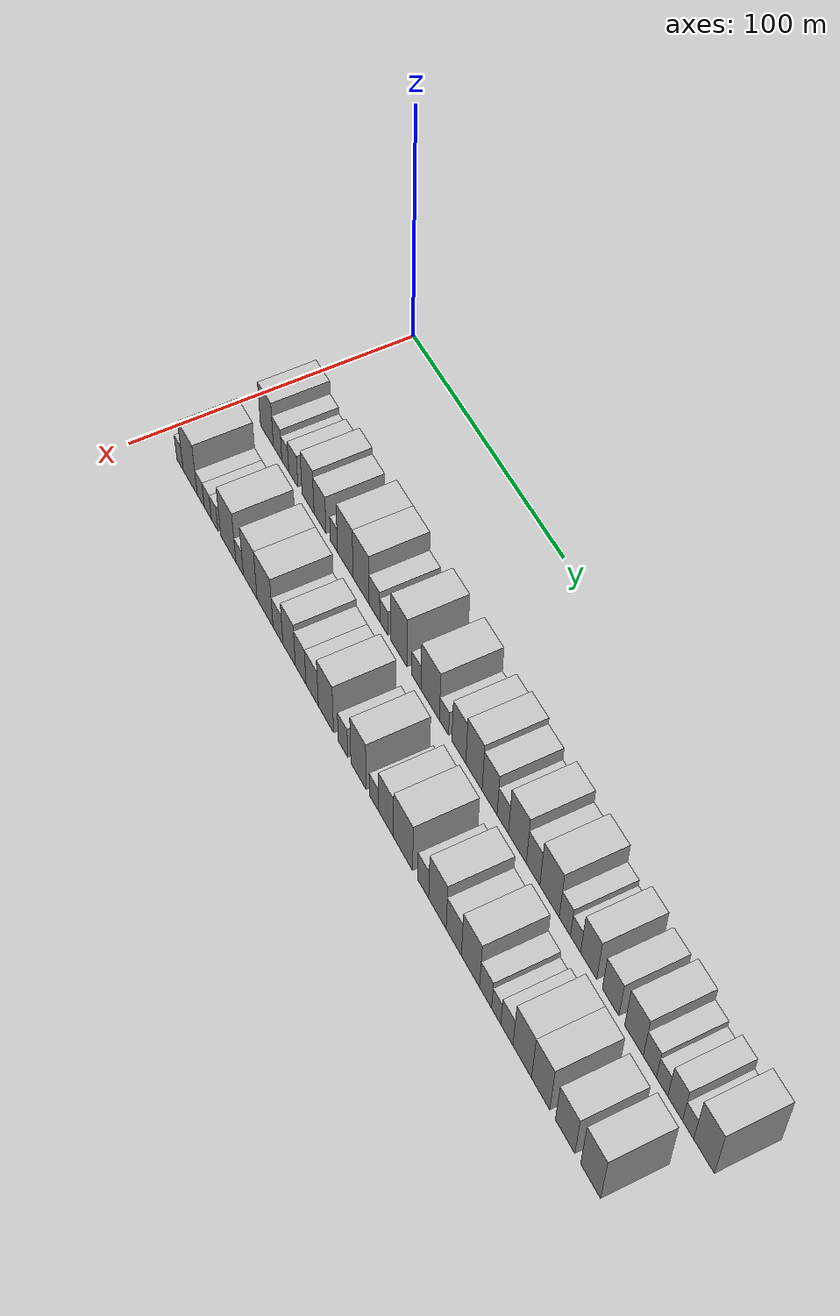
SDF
<sdf version="1.6">
 <world name="default">
  <model name="building_30">
   <static>1</static>
   <pose>50.0000 16.5006 0 0.000000 0.000000 0.000000</pose>
   <link name="link">
    <pose>0 0 10.50 0 0 0</pose>
    <collision name="collision"><geometry><box><size>20.0000 9.6423 21.0000</size></box></geometry></collision>
    <visual name="visual">
     <cast_shadows>0</cast_shadows>
     <geometry><box><size>20.0000 9.6423 21.0000</size></box></geometry>
     <material>
      <script>
       <uri>model://HANNAS_wall/materials/scripts</uri>
       <uri>model://HANNAS_wall/materials/textures</uri>
       <name>vrc/HANNAS_wall</name>
      </script>
     </material>
    </visual>
   </link>
  </model>
  <model name="building_31">
   <static>1</static>
   <pose>50.0000 24.4151 0 0.000000 0.000000 0.000000</pose>
   <link name="link">
    <pose>0 0 7.50 0 0 0</pose>
    <collision name="collision"><geometry><box><size>20.0000 6.1867 15.0000</size></box></geometry></collision>
    <visual name="visual">
     <cast_shadows>0</cast_shadows>
     <geometry><box><size>20.0000 6.1867 15.0000</size></box></geometry>
     <material>
      <script>
       <uri>model://HANNAS_wall/materials/scripts</uri>
       <uri>model://HANNAS_wall/materials/textures</uri>
       <name>vrc/HANNAS_wall</name>
      </script>
     </material>
    </visual>
   </link>
  </model>
  <model name="building_32">
   <static>1</static>
   <pose>50.0000 30.0523 0 0.000000 0.000000 0.000000</pose>
   <link name="link">
    <pose>0 0 6.00 0 0 0</pose>
    <collision name="collision"><geometry><box><size>20.0000 5.0875 12.0000</size></box></geometry></collision>
    <visual name="visual">
     <cast_shadows>0</cast_shadows>
     <geometry><box><size>20.0000 5.0875 12.0000</size></box></geometry>
     <material>
      <script>
       <uri>model://HANNAS_wall/materials/scripts</uri>
       <uri>model://HANNAS_wall/materials/textures</uri>
       <name>vrc/HANNAS_wall</name>
      </script>
     </material>
    </visual>
   </link>
  </model>
  <model name="building_33">
   <static>1</static>
   <pose>50.0000 35.8845 0 0.000000 0.000000 0.000000</pose>
   <link name="link">
    <pose>0 0 7.50 0 0 0</pose>
    <collision name="collision"><geometry><box><size>20.0000 6.5770 15.0000</size></box></geometry></collision>
    <visual name="visual">
     <cast_shadows>0</cast_shadows>
     <geometry><box><size>20.0000 6.5770 15.0000</size></box></geometry>
     <material>
      <script>
       <uri>model://HANNAS_wall/materials/scripts</uri>
       <uri>model://HANNAS_wall/materials/textures</uri>
       <name>vrc/HANNAS_wall</name>
      </script>
     </material>
    </visual>
   </link>
  </model>
  <model name="building_34">
   <static>1</static>
   <pose>50.0000 46.4833 0 0.000000 0.000000 0.000000</pose>
   <link name="link">
    <pose>0 0 10.50 0 0 0</pose>
    <collision name="collision"><geometry><box><size>20.0000 8.6205 21.0000</size></box></geometry></collision>
    <visual name="visual">
     <cast_shadows>0</cast_shadows>
     <geometry><box><size>20.0000 8.6205 21.0000</size></box></geometry>
     <material>
      <script>
       <uri>model://HANNAS_wall/materials/scripts</uri>
       <uri>model://HANNAS_wall/materials/textures</uri>
       <name>vrc/HANNAS_wall</name>
      </script>
     </material>
    </visual>
   </link>
  </model>
  <model name="building_35">
   <static>1</static>
   <pose>50.0000 55.0244 0 0.000000 0.000000 0.000000</pose>
   <link name="link">
    <pose>0 0 9.00 0 0 0</pose>
    <collision name="collision"><geometry><box><size>20.0000 8.4618 18.0000</size></box></geometry></collision>
    <visual name="visual">
     <cast_shadows>0</cast_shadows>
     <geometry><box><size>20.0000 8.4618 18.0000</size></box></geometry>
     <material>
      <script>
       <uri>model://HANNAS_wall/materials/scripts</uri>
       <uri>model://HANNAS_wall/materials/textures</uri>
       <name>vrc/HANNAS_wall</name>
      </script>
     </material>
    </visual>
   </link>
  </model>
  <model name="building_36">
   <static>1</static>
   <pose>50.0000 64.7247 0 0.000000 0.000000 0.000000</pose>
   <link name="link">
    <pose>0 0 6.00 0 0 0</pose>
    <collision name="collision"><geometry><box><size>20.0000 4.9388 12.0000</size></box></geometry></collision>
    <visual name="visual">
     <cast_shadows>0</cast_shadows>
     <geometry><box><size>20.0000 4.9388 12.0000</size></box></geometry>
     <material>
      <script>
       <uri>model://HANNAS_wall/materials/scripts</uri>
       <uri>model://HANNAS_wall/materials/textures</uri>
       <name>vrc/HANNAS_wall</name>
      </script>
     </material>
    </visual>
   </link>
  </model>
  <model name="building_37">
   <static>1</static>
   <pose>50.0000 72.5590 0 0.000000 0.000000 0.000000</pose>
   <link name="link">
    <pose>0 0 12.00 0 0 0</pose>
    <collision name="collision"><geometry><box><size>20.0000 10.7297 24.0000</size></box></geometry></collision>
    <visual name="visual">
     <cast_shadows>0</cast_shadows>
     <geometry><box><size>20.0000 10.7297 24.0000</size></box></geometry>
     <material>
      <script>
       <uri>model://HANNAS_wall/materials/scripts</uri>
       <uri>model://HANNAS_wall/materials/textures</uri>
       <name>vrc/HANNAS_wall</name>
      </script>
     </material>
    </visual>
   </link>
  </model>
  <model name="building_38">
   <static>1</static>
   <pose>50.0000 83.3200 0 0.000000 0.000000 0.000000</pose>
   <link name="link">
    <pose>0 0 12.00 0 0 0</pose>
    <collision name="collision"><geometry><box><size>20.0000 10.7925 24.0000</size></box></geometry></collision>
    <visual name="visual">
     <cast_shadows>0</cast_shadows>
     <geometry><box><size>20.0000 10.7925 24.0000</size></box></geometry>
     <material>
      <script>
       <uri>model://HANNAS_wall/materials/scripts</uri>
       <uri>model://HANNAS_wall/materials/textures</uri>
       <name>vrc/HANNAS_wall</name>
      </script>
     </material>
    </visual>
   </link>
  </model>
  <model name="building_39">
   <static>1</static>
   <pose>50.0000 92.2625 0 0.000000 0.000000 0.000000</pose>
   <link name="link">
    <pose>0 0 7.50 0 0 0</pose>
    <collision name="collision"><geometry><box><size>20.0000 7.0925 15.0000</size></box></geometry></collision>
    <visual name="visual">
     <cast_shadows>0</cast_shadows>
     <geometry><box><size>20.0000 7.0925 15.0000</size></box></geometry>
     <material>
      <script>
       <uri>model://HANNAS_wall/materials/scripts</uri>
       <uri>model://HANNAS_wall/materials/textures</uri>
       <name>vrc/HANNAS_wall</name>
      </script>
     </material>
    </visual>
   </link>
  </model>
  <model name="building_40">
   <static>1</static>
   <pose>50.0000 98.4907 0 0.000000 0.000000 0.000000</pose>
   <link name="link">
    <pose>0 0 6.00 0 0 0</pose>
    <collision name="collision"><geometry><box><size>20.0000 5.3638 12.0000</size></box></geometry></collision>
    <visual name="visual">
     <cast_shadows>0</cast_shadows>
     <geometry><box><size>20.0000 5.3638 12.0000</size></box></geometry>
     <material>
      <script>
       <uri>model://HANNAS_wall/materials/scripts</uri>
       <uri>model://HANNAS_wall/materials/textures</uri>
       <name>vrc/HANNAS_wall</name>
      </script>
     </material>
    </visual>
   </link>
  </model>
  <model name="building_41">
   <static>1</static>
   <pose>50.0000 108.3969 0 0.000000 0.000000 0.000000</pose>
   <link name="link">
    <pose>0 0 12.00 0 0 0</pose>
    <collision name="collision"><geometry><box><size>20.0000 10.4485 24.0000</size></box></geometry></collision>
    <visual name="visual">
     <cast_shadows>0</cast_shadows>
     <geometry><box><size>20.0000 10.4485 24.0000</size></box></geometry>
     <material>
      <script>
       <uri>model://HANNAS_wall/materials/scripts</uri>
       <uri>model://HANNAS_wall/materials/textures</uri>
       <name>vrc/HANNAS_wall</name>
      </script>
     </material>
    </visual>
   </link>
  </model>
  <model name="building_42">
   <static>1</static>
   <pose>50.0000 119.5557 0 0.000000 0.000000 0.000000</pose>
   <link name="link">
    <pose>0 0 6.00 0 0 0</pose>
    <collision name="collision"><geometry><box><size>20.0000 5.8690 12.0000</size></box></geometry></collision>
    <visual name="visual">
     <cast_shadows>0</cast_shadows>
     <geometry><box><size>20.0000 5.8690 12.0000</size></box></geometry>
     <material>
      <script>
       <uri>model://HANNAS_wall/materials/scripts</uri>
       <uri>model://HANNAS_wall/materials/textures</uri>
       <name>vrc/HANNAS_wall</name>
      </script>
     </material>
    </visual>
   </link>
  </model>
  <model name="building_43">
   <static>1</static>
   <pose>50.0000 128.3248 0 0.000000 0.000000 0.000000</pose>
   <link name="link">
    <pose>0 0 12.00 0 0 0</pose>
    <collision name="collision"><geometry><box><size>20.0000 11.6693 24.0000</size></box></geometry></collision>
    <visual name="visual">
     <cast_shadows>0</cast_shadows>
     <geometry><box><size>20.0000 11.6693 24.0000</size></box></geometry>
     <material>
      <script>
       <uri>model://HANNAS_wall/materials/scripts</uri>
       <uri>model://HANNAS_wall/materials/textures</uri>
       <name>vrc/HANNAS_wall</name>
      </script>
     </material>
    </visual>
   </link>
  </model>
  <model name="building_44">
   <static>1</static>
   <pose>50.0000 137.0263 0 0.000000 0.000000 0.000000</pose>
   <link name="link">
    <pose>0 0 6.00 0 0 0</pose>
    <collision name="collision"><geometry><box><size>20.0000 5.7337 12.0000</size></box></geometry></collision>
    <visual name="visual">
     <cast_shadows>0</cast_shadows>
     <geometry><box><size>20.0000 5.7337 12.0000</size></box></geometry>
     <material>
      <script>
       <uri>model://HANNAS_wall/materials/scripts</uri>
       <uri>model://HANNAS_wall/materials/textures</uri>
       <name>vrc/HANNAS_wall</name>
      </script>
     </material>
    </visual>
   </link>
  </model>
  <model name="building_45">
   <static>1</static>
   <pose>50.0000 146.1741 0 0.000000 0.000000 0.000000</pose>
   <link name="link">
    <pose>0 0 10.50 0 0 0</pose>
    <collision name="collision"><geometry><box><size>20.0000 8.5618 21.0000</size></box></geometry></collision>
    <visual name="visual">
     <cast_shadows>0</cast_shadows>
     <geometry><box><size>20.0000 8.5618 21.0000</size></box></geometry>
     <material>
      <script>
       <uri>model://HANNAS_wall/materials/scripts</uri>
       <uri>model://HANNAS_wall/materials/textures</uri>
       <name>vrc/HANNAS_wall</name>
      </script>
     </material>
    </visual>
   </link>
  </model>
  <model name="building_46">
   <static>1</static>
   <pose>50.0000 155.3698 0 0.000000 0.000000 0.000000</pose>
   <link name="link">
    <pose>0 0 12.00 0 0 0</pose>
    <collision name="collision"><geometry><box><size>20.0000 9.8296 24.0000</size></box></geometry></collision>
    <visual name="visual">
     <cast_shadows>0</cast_shadows>
     <geometry><box><size>20.0000 9.8296 24.0000</size></box></geometry>
     <material>
      <script>
       <uri>model://HANNAS_wall/materials/scripts</uri>
       <uri>model://HANNAS_wall/materials/textures</uri>
       <name>vrc/HANNAS_wall</name>
      </script>
     </material>
    </visual>
   </link>
  </model>
  <model name="building_47">
   <static>1</static>
   <pose>50.0000 164.7303 0 0.000000 0.000000 0.000000</pose>
   <link name="link">
    <pose>0 0 10.50 0 0 0</pose>
    <collision name="collision"><geometry><box><size>20.0000 8.8915 21.0000</size></box></geometry></collision>
    <visual name="visual">
     <cast_shadows>0</cast_shadows>
     <geometry><box><size>20.0000 8.8915 21.0000</size></box></geometry>
     <material>
      <script>
       <uri>model://HANNAS_wall/materials/scripts</uri>
       <uri>model://HANNAS_wall/materials/textures</uri>
       <name>vrc/HANNAS_wall</name>
      </script>
     </material>
    </visual>
   </link>
  </model>
  <model name="building_48">
   <static>1</static>
   <pose>50.0000 172.5086 0 0.000000 0.000000 0.000000</pose>
   <link name="link">
    <pose>0 0 7.50 0 0 0</pose>
    <collision name="collision"><geometry><box><size>20.0000 6.6652 15.0000</size></box></geometry></collision>
    <visual name="visual">
     <cast_shadows>0</cast_shadows>
     <geometry><box><size>20.0000 6.6652 15.0000</size></box></geometry>
     <material>
      <script>
       <uri>model://HANNAS_wall/materials/scripts</uri>
       <uri>model://HANNAS_wall/materials/textures</uri>
       <name>vrc/HANNAS_wall</name>
      </script>
     </material>
    </visual>
   </link>
  </model>
  <model name="building_49">
   <static>1</static>
   <pose>50.0000 181.0192 0 0.000000 0.000000 0.000000</pose>
   <link name="link">
    <pose>0 0 12.00 0 0 0</pose>
    <collision name="collision"><geometry><box><size>20.0000 10.3559 24.0000</size></box></geometry></collision>
    <visual name="visual">
     <cast_shadows>0</cast_shadows>
     <geometry><box><size>20.0000 10.3559 24.0000</size></box></geometry>
     <material>
      <script>
       <uri>model://HANNAS_wall/materials/scripts</uri>
       <uri>model://HANNAS_wall/materials/textures</uri>
       <name>vrc/HANNAS_wall</name>
      </script>
     </material>
    </visual>
   </link>
  </model>
  <model name="building_50">
   <static>1</static>
   <pose>50.0000 190.0867 0 0.000000 0.000000 0.000000</pose>
   <link name="link">
    <pose>0 0 9.00 0 0 0</pose>
    <collision name="collision"><geometry><box><size>20.0000 7.7792 18.0000</size></box></geometry></collision>
    <visual name="visual">
     <cast_shadows>0</cast_shadows>
     <geometry><box><size>20.0000 7.7792 18.0000</size></box></geometry>
     <material>
      <script>
       <uri>model://HANNAS_wall/materials/scripts</uri>
       <uri>model://HANNAS_wall/materials/textures</uri>
       <name>vrc/HANNAS_wall</name>
      </script>
     </material>
    </visual>
   </link>
  </model>
  <model name="building_51">
   <static>1</static>
   <pose>50.0000 199.4191 0 0.000000 0.000000 0.000000</pose>
   <link name="link">
    <pose>0 0 12.00 0 0 0</pose>
    <collision name="collision"><geometry><box><size>20.0000 10.8854 24.0000</size></box></geometry></collision>
    <visual name="visual">
     <cast_shadows>0</cast_shadows>
     <geometry><box><size>20.0000 10.8854 24.0000</size></box></geometry>
     <material>
      <script>
       <uri>model://HANNAS_wall/materials/scripts</uri>
       <uri>model://HANNAS_wall/materials/textures</uri>
       <name>vrc/HANNAS_wall</name>
      </script>
     </material>
    </visual>
   </link>
  </model>
  <model name="building_52">
   <static>1</static>
   <pose>50.0000 207.9827 0 0.000000 0.000000 0.000000</pose>
   <link name="link">
    <pose>0 0 7.50 0 0 0</pose>
    <collision name="collision"><geometry><box><size>20.0000 6.2417 15.0000</size></box></geometry></collision>
    <visual name="visual">
     <cast_shadows>0</cast_shadows>
     <geometry><box><size>20.0000 6.2417 15.0000</size></box></geometry>
     <material>
      <script>
       <uri>model://HANNAS_wall/materials/scripts</uri>
       <uri>model://HANNAS_wall/materials/textures</uri>
       <name>vrc/HANNAS_wall</name>
      </script>
     </material>
    </visual>
   </link>
  </model>
  <model name="building_53">
   <static>1</static>
   <pose>50.0000 213.8942 0 0.000000 0.000000 0.000000</pose>
   <link name="link">
    <pose>0 0 6.00 0 0 0</pose>
    <collision name="collision"><geometry><box><size>20.0000 5.5813 12.0000</size></box></geometry></collision>
    <visual name="visual">
     <cast_shadows>0</cast_shadows>
     <geometry><box><size>20.0000 5.5813 12.0000</size></box></geometry>
     <material>
      <script>
       <uri>model://HANNAS_wall/materials/scripts</uri>
       <uri>model://HANNAS_wall/materials/textures</uri>
       <name>vrc/HANNAS_wall</name>
      </script>
     </material>
    </visual>
   </link>
  </model>
  <model name="building_54">
   <static>1</static>
   <pose>50.0000 221.0543 0 0.000000 0.000000 0.000000</pose>
   <link name="link">
    <pose>0 0 10.50 0 0 0</pose>
    <collision name="collision"><geometry><box><size>20.0000 8.7389 21.0000</size></box></geometry></collision>
    <visual name="visual">
     <cast_shadows>0</cast_shadows>
     <geometry><box><size>20.0000 8.7389 21.0000</size></box></geometry>
     <material>
      <script>
       <uri>model://HANNAS_wall/materials/scripts</uri>
       <uri>model://HANNAS_wall/materials/textures</uri>
       <name>vrc/HANNAS_wall</name>
      </script>
     </material>
    </visual>
   </link>
  </model>
  <model name="building_55">
   <static>1</static>
   <pose>50.0000 232.8241 0 0.000000 0.000000 0.000000</pose>
   <link name="link">
    <pose>0 0 9.00 0 0 0</pose>
    <collision name="collision"><geometry><box><size>20.0000 8.8006 18.0000</size></box></geometry></collision>
    <visual name="visual">
     <cast_shadows>0</cast_shadows>
     <geometry><box><size>20.0000 8.8006 18.0000</size></box></geometry>
     <material>
      <script>
       <uri>model://HANNAS_wall/materials/scripts</uri>
       <uri>model://HANNAS_wall/materials/textures</uri>
       <name>vrc/HANNAS_wall</name>
      </script>
     </material>
    </visual>
   </link>
  </model>
  <model name="building_56">
   <static>1</static>
   <pose>50.0000 245.0541 0 0.000000 0.000000 0.000000</pose>
   <link name="link">
    <pose>0 0 10.50 0 0 0</pose>
    <collision name="collision"><geometry><box><size>20.0000 9.6595 21.0000</size></box></geometry></collision>
    <visual name="visual">
     <cast_shadows>0</cast_shadows>
     <geometry><box><size>20.0000 9.6595 21.0000</size></box></geometry>
     <material>
      <script>
       <uri>model://HANNAS_wall/materials/scripts</uri>
       <uri>model://HANNAS_wall/materials/textures</uri>
       <name>vrc/HANNAS_wall</name>
      </script>
     </material>
    </visual>
   </link>
  </model>
  <model name="building_57">
   <static>1</static>
   <pose>50.0000 253.2717 0 0.000000 0.000000 0.000000</pose>
   <link name="link">
    <pose>0 0 7.50 0 0 0</pose>
    <collision name="collision"><geometry><box><size>20.0000 6.7756 15.0000</size></box></geometry></collision>
    <visual name="visual">
     <cast_shadows>0</cast_shadows>
     <geometry><box><size>20.0000 6.7756 15.0000</size></box></geometry>
     <material>
      <script>
       <uri>model://HANNAS_wall/materials/scripts</uri>
       <uri>model://HANNAS_wall/materials/textures</uri>
       <name>vrc/HANNAS_wall</name>
      </script>
     </material>
    </visual>
   </link>
  </model>
  <model name="building_58">
   <static>1</static>
   <pose>50.0000 259.5477 0 0.000000 0.000000 0.000000</pose>
   <link name="link">
    <pose>0 0 6.00 0 0 0</pose>
    <collision name="collision"><geometry><box><size>20.0000 5.7763 12.0000</size></box></geometry></collision>
    <visual name="visual">
     <cast_shadows>0</cast_shadows>
     <geometry><box><size>20.0000 5.7763 12.0000</size></box></geometry>
     <material>
      <script>
       <uri>model://HANNAS_wall/materials/scripts</uri>
       <uri>model://HANNAS_wall/materials/textures</uri>
       <name>vrc/HANNAS_wall</name>
      </script>
     </material>
    </visual>
   </link>
  </model>
  <model name="building_59">
   <static>1</static>
   <pose>50.0000 266.1331 0 0.000000 0.000000 0.000000</pose>
   <link name="link">
    <pose>0 0 9.00 0 0 0</pose>
    <collision name="collision"><geometry><box><size>20.0000 7.3945 18.0000</size></box></geometry></collision>
    <visual name="visual">
     <cast_shadows>0</cast_shadows>
     <geometry><box><size>20.0000 7.3945 18.0000</size></box></geometry>
     <material>
      <script>
       <uri>model://HANNAS_wall/materials/scripts</uri>
       <uri>model://HANNAS_wall/materials/textures</uri>
       <name>vrc/HANNAS_wall</name>
      </script>
     </material>
    </visual>
   </link>
  </model>
  <model name="building_60">
   <static>1</static>
   <pose>50.0000 272.6167 0 0.000000 0.000000 0.000000</pose>
   <link name="link">
    <pose>0 0 6.00 0 0 0</pose>
    <collision name="collision"><geometry><box><size>20.0000 5.5727 12.0000</size></box></geometry></collision>
    <visual name="visual">
     <cast_shadows>0</cast_shadows>
     <geometry><box><size>20.0000 5.5727 12.0000</size></box></geometry>
     <material>
      <script>
       <uri>model://HANNAS_wall/materials/scripts</uri>
       <uri>model://HANNAS_wall/materials/textures</uri>
       <name>vrc/HANNAS_wall</name>
      </script>
     </material>
    </visual>
   </link>
  </model>
  <model name="building_61">
   <static>1</static>
   <pose>50.0000 280.4854 0 0.000000 0.000000 0.000000</pose>
   <link name="link">
    <pose>0 0 12.00 0 0 0</pose>
    <collision name="collision"><geometry><box><size>20.0000 10.1645 24.0000</size></box></geometry></collision>
    <visual name="visual">
     <cast_shadows>0</cast_shadows>
     <geometry><box><size>20.0000 10.1645 24.0000</size></box></geometry>
     <material>
      <script>
       <uri>model://HANNAS_wall/materials/scripts</uri>
       <uri>model://HANNAS_wall/materials/textures</uri>
       <name>vrc/HANNAS_wall</name>
      </script>
     </material>
    </visual>
   </link>
  </model>
  <model name="building_95">
   <static>1</static>
   <pose>79.0000 14.8140 0 0.000000 0.000000 0.000000</pose>
   <link name="link">
    <pose>0 0 6.00 0 0 0</pose>
    <collision name="collision"><geometry><box><size>20.0000 4.8831 12.0000</size></box></geometry></collision>
    <visual name="visual">
     <cast_shadows>0</cast_shadows>
     <geometry><box><size>20.0000 4.8831 12.0000</size></box></geometry>
     <material>
      <script>
       <uri>model://HANNAS_wall/materials/scripts</uri>
       <uri>model://HANNAS_wall/materials/textures</uri>
       <name>vrc/HANNAS_wall</name>
      </script>
     </material>
    </visual>
   </link>
  </model>
  <model name="building_96">
   <static>1</static>
   <pose>79.0000 22.6443 0 0.000000 0.000000 0.000000</pose>
   <link name="link">
    <pose>0 0 12.00 0 0 0</pose>
    <collision name="collision"><geometry><box><size>20.0000 10.7775 24.0000</size></box></geometry></collision>
    <visual name="visual">
     <cast_shadows>0</cast_shadows>
     <geometry><box><size>20.0000 10.7775 24.0000</size></box></geometry>
     <material>
      <script>
       <uri>model://HANNAS_wall/materials/scripts</uri>
       <uri>model://HANNAS_wall/materials/textures</uri>
       <name>vrc/HANNAS_wall</name>
      </script>
     </material>
    </visual>
   </link>
  </model>
  <model name="building_97">
   <static>1</static>
   <pose>79.0000 30.7441 0 0.000000 0.000000 0.000000</pose>
   <link name="link">
    <pose>0 0 6.00 0 0 0</pose>
    <collision name="collision"><geometry><box><size>20.0000 5.4222 12.0000</size></box></geometry></collision>
    <visual name="visual">
     <cast_shadows>0</cast_shadows>
     <geometry><box><size>20.0000 5.4222 12.0000</size></box></geometry>
     <material>
      <script>
       <uri>model://HANNAS_wall/materials/scripts</uri>
       <uri>model://HANNAS_wall/materials/textures</uri>
       <name>vrc/HANNAS_wall</name>
      </script>
     </material>
    </visual>
   </link>
  </model>
  <model name="building_98">
   <static>1</static>
   <pose>79.0000 36.1029 0 0.000000 0.000000 0.000000</pose>
   <link name="link">
    <pose>0 0 6.00 0 0 0</pose>
    <collision name="collision"><geometry><box><size>20.0000 5.2954 12.0000</size></box></geometry></collision>
    <visual name="visual">
     <cast_shadows>0</cast_shadows>
     <geometry><box><size>20.0000 5.2954 12.0000</size></box></geometry>
     <material>
      <script>
       <uri>model://HANNAS_wall/materials/scripts</uri>
       <uri>model://HANNAS_wall/materials/textures</uri>
       <name>vrc/HANNAS_wall</name>
      </script>
     </material>
    </visual>
   </link>
  </model>
  <model name="building_99">
   <static>1</static>
   <pose>79.0000 41.2283 0 0.000000 0.000000 0.000000</pose>
   <link name="link">
    <pose>0 0 6.00 0 0 0</pose>
    <collision name="collision"><geometry><box><size>20.0000 4.9553 12.0000</size></box></geometry></collision>
    <visual name="visual">
     <cast_shadows>0</cast_shadows>
     <geometry><box><size>20.0000 4.9553 12.0000</size></box></geometry>
     <material>
      <script>
       <uri>model://HANNAS_wall/materials/scripts</uri>
       <uri>model://HANNAS_wall/materials/textures</uri>
       <name>vrc/HANNAS_wall</name>
      </script>
     </material>
    </visual>
   </link>
  </model>
  <model name="building_100">
   <static>1</static>
   <pose>79.0000 51.2626 0 0.000000 0.000000 0.000000</pose>
   <link name="link">
    <pose>0 0 12.00 0 0 0</pose>
    <collision name="collision"><geometry><box><size>20.0000 11.1134 24.0000</size></box></geometry></collision>
    <visual name="visual">
     <cast_shadows>0</cast_shadows>
     <geometry><box><size>20.0000 11.1134 24.0000</size></box></geometry>
     <material>
      <script>
       <uri>model://HANNAS_wall/materials/scripts</uri>
       <uri>model://HANNAS_wall/materials/textures</uri>
       <name>vrc/HANNAS_wall</name>
      </script>
     </material>
    </visual>
   </link>
  </model>
  <model name="building_101">
   <static>1</static>
   <pose>79.0000 59.5426 0 0.000000 0.000000 0.000000</pose>
   <link name="link">
    <pose>0 0 6.00 0 0 0</pose>
    <collision name="collision"><geometry><box><size>20.0000 5.4466 12.0000</size></box></geometry></collision>
    <visual name="visual">
     <cast_shadows>0</cast_shadows>
     <geometry><box><size>20.0000 5.4466 12.0000</size></box></geometry>
     <material>
      <script>
       <uri>model://HANNAS_wall/materials/scripts</uri>
       <uri>model://HANNAS_wall/materials/textures</uri>
       <name>vrc/HANNAS_wall</name>
      </script>
     </material>
    </visual>
   </link>
  </model>
  <model name="building_102">
   <static>1</static>
   <pose>79.0000 67.1863 0 0.000000 0.000000 0.000000</pose>
   <link name="link">
    <pose>0 0 12.00 0 0 0</pose>
    <collision name="collision"><geometry><box><size>20.0000 9.8408 24.0000</size></box></geometry></collision>
    <visual name="visual">
     <cast_shadows>0</cast_shadows>
     <geometry><box><size>20.0000 9.8408 24.0000</size></box></geometry>
     <material>
      <script>
       <uri>model://HANNAS_wall/materials/scripts</uri>
       <uri>model://HANNAS_wall/materials/textures</uri>
       <name>vrc/HANNAS_wall</name>
      </script>
     </material>
    </visual>
   </link>
  </model>
  <model name="building_103">
   <static>1</static>
   <pose>79.0000 77.7209 0 0.000000 0.000000 0.000000</pose>
   <link name="link">
    <pose>0 0 12.00 0 0 0</pose>
    <collision name="collision"><geometry><box><size>20.0000 11.2283 24.0000</size></box></geometry></collision>
    <visual name="visual">
     <cast_shadows>0</cast_shadows>
     <geometry><box><size>20.0000 11.2283 24.0000</size></box></geometry>
     <material>
      <script>
       <uri>model://HANNAS_wall/materials/scripts</uri>
       <uri>model://HANNAS_wall/materials/textures</uri>
       <name>vrc/HANNAS_wall</name>
      </script>
     </material>
    </visual>
   </link>
  </model>
  <model name="building_104">
   <static>1</static>
   <pose>79.0000 86.7648 0 0.000000 0.000000 0.000000</pose>
   <link name="link">
    <pose>0 0 7.50 0 0 0</pose>
    <collision name="collision"><geometry><box><size>20.0000 6.8595 15.0000</size></box></geometry></collision>
    <visual name="visual">
     <cast_shadows>0</cast_shadows>
     <geometry><box><size>20.0000 6.8595 15.0000</size></box></geometry>
     <material>
      <script>
       <uri>model://HANNAS_wall/materials/scripts</uri>
       <uri>model://HANNAS_wall/materials/textures</uri>
       <name>vrc/HANNAS_wall</name>
      </script>
     </material>
    </visual>
   </link>
  </model>
  <model name="building_105">
   <static>1</static>
   <pose>79.0000 94.4989 0 0.000000 0.000000 0.000000</pose>
   <link name="link">
    <pose>0 0 10.50 0 0 0</pose>
    <collision name="collision"><geometry><box><size>20.0000 8.6088 21.0000</size></box></geometry></collision>
    <visual name="visual">
     <cast_shadows>0</cast_shadows>
     <geometry><box><size>20.0000 8.6088 21.0000</size></box></geometry>
     <material>
      <script>
       <uri>model://HANNAS_wall/materials/scripts</uri>
       <uri>model://HANNAS_wall/materials/textures</uri>
       <name>vrc/HANNAS_wall</name>
      </script>
     </material>
    </visual>
   </link>
  </model>
  <model name="building_106">
   <static>1</static>
   <pose>79.0000 102.4062 0 0.000000 0.000000 0.000000</pose>
   <link name="link">
    <pose>0 0 9.00 0 0 0</pose>
    <collision name="collision"><geometry><box><size>20.0000 7.2058 18.0000</size></box></geometry></collision>
    <visual name="visual">
     <cast_shadows>0</cast_shadows>
     <geometry><box><size>20.0000 7.2058 18.0000</size></box></geometry>
     <material>
      <script>
       <uri>model://HANNAS_wall/materials/scripts</uri>
       <uri>model://HANNAS_wall/materials/textures</uri>
       <name>vrc/HANNAS_wall</name>
      </script>
     </material>
    </visual>
   </link>
  </model>
  <model name="building_107">
   <static>1</static>
   <pose>79.0000 110.1682 0 0.000000 0.000000 0.000000</pose>
   <link name="link">
    <pose>0 0 9.00 0 0 0</pose>
    <collision name="collision"><geometry><box><size>20.0000 8.3181 18.0000</size></box></geometry></collision>
    <visual name="visual">
     <cast_shadows>0</cast_shadows>
     <geometry><box><size>20.0000 8.3181 18.0000</size></box></geometry>
     <material>
      <script>
       <uri>model://HANNAS_wall/materials/scripts</uri>
       <uri>model://HANNAS_wall/materials/textures</uri>
       <name>vrc/HANNAS_wall</name>
      </script>
     </material>
    </visual>
   </link>
  </model>
  <model name="building_108">
   <static>1</static>
   <pose>79.0000 119.3735 0 0.000000 0.000000 0.000000</pose>
   <link name="link">
    <pose>0 0 12.00 0 0 0</pose>
    <collision name="collision"><geometry><box><size>20.0000 10.0926 24.0000</size></box></geometry></collision>
    <visual name="visual">
     <cast_shadows>0</cast_shadows>
     <geometry><box><size>20.0000 10.0926 24.0000</size></box></geometry>
     <material>
      <script>
       <uri>model://HANNAS_wall/materials/scripts</uri>
       <uri>model://HANNAS_wall/materials/textures</uri>
       <name>vrc/HANNAS_wall</name>
      </script>
     </material>
    </visual>
   </link>
  </model>
  <model name="building_109">
   <static>1</static>
   <pose>79.0000 130.5140 0 0.000000 0.000000 0.000000</pose>
   <link name="link">
    <pose>0 0 7.50 0 0 0</pose>
    <collision name="collision"><geometry><box><size>20.0000 6.1885 15.0000</size></box></geometry></collision>
    <visual name="visual">
     <cast_shadows>0</cast_shadows>
     <geometry><box><size>20.0000 6.1885 15.0000</size></box></geometry>
     <material>
      <script>
       <uri>model://HANNAS_wall/materials/scripts</uri>
       <uri>model://HANNAS_wall/materials/textures</uri>
       <name>vrc/HANNAS_wall</name>
      </script>
     </material>
    </visual>
   </link>
  </model>
  <model name="building_110">
   <static>1</static>
   <pose>79.0000 140.5212 0 0.000000 0.000000 0.000000</pose>
   <link name="link">
    <pose>0 0 12.00 0 0 0</pose>
    <collision name="collision"><geometry><box><size>20.0000 9.8259 24.0000</size></box></geometry></collision>
    <visual name="visual">
     <cast_shadows>0</cast_shadows>
     <geometry><box><size>20.0000 9.8259 24.0000</size></box></geometry>
     <material>
      <script>
       <uri>model://HANNAS_wall/materials/scripts</uri>
       <uri>model://HANNAS_wall/materials/textures</uri>
       <name>vrc/HANNAS_wall</name>
      </script>
     </material>
    </visual>
   </link>
  </model>
  <model name="building_111">
   <static>1</static>
   <pose>79.0000 150.3769 0 0.000000 0.000000 0.000000</pose>
   <link name="link">
    <pose>0 0 6.00 0 0 0</pose>
    <collision name="collision"><geometry><box><size>20.0000 5.8856 12.0000</size></box></geometry></collision>
    <visual name="visual">
     <cast_shadows>0</cast_shadows>
     <geometry><box><size>20.0000 5.8856 12.0000</size></box></geometry>
     <material>
      <script>
       <uri>model://HANNAS_wall/materials/scripts</uri>
       <uri>model://HANNAS_wall/materials/textures</uri>
       <name>vrc/HANNAS_wall</name>
      </script>
     </material>
    </visual>
   </link>
  </model>
  <model name="building_112">
   <static>1</static>
   <pose>79.0000 157.9287 0 0.000000 0.000000 0.000000</pose>
   <link name="link">
    <pose>0 0 10.50 0 0 0</pose>
    <collision name="collision"><geometry><box><size>20.0000 9.2180 21.0000</size></box></geometry></collision>
    <visual name="visual">
     <cast_shadows>0</cast_shadows>
     <geometry><box><size>20.0000 9.2180 21.0000</size></box></geometry>
     <material>
      <script>
       <uri>model://HANNAS_wall/materials/scripts</uri>
       <uri>model://HANNAS_wall/materials/textures</uri>
       <name>vrc/HANNAS_wall</name>
      </script>
     </material>
    </visual>
   </link>
  </model>
  <model name="building_113">
   <static>1</static>
   <pose>79.0000 168.3629 0 0.000000 0.000000 0.000000</pose>
   <link name="link">
    <pose>0 0 12.00 0 0 0</pose>
    <collision name="collision"><geometry><box><size>20.0000 11.6503 24.0000</size></box></geometry></collision>
    <visual name="visual">
     <cast_shadows>0</cast_shadows>
     <geometry><box><size>20.0000 11.6503 24.0000</size></box></geometry>
     <material>
      <script>
       <uri>model://HANNAS_wall/materials/scripts</uri>
       <uri>model://HANNAS_wall/materials/textures</uri>
       <name>vrc/HANNAS_wall</name>
      </script>
     </material>
    </visual>
   </link>
  </model>
  <model name="building_114">
   <static>1</static>
   <pose>79.0000 180.5038 0 0.000000 0.000000 0.000000</pose>
   <link name="link">
    <pose>0 0 7.50 0 0 0</pose>
    <collision name="collision"><geometry><box><size>20.0000 6.6314 15.0000</size></box></geometry></collision>
    <visual name="visual">
     <cast_shadows>0</cast_shadows>
     <geometry><box><size>20.0000 6.6314 15.0000</size></box></geometry>
     <material>
      <script>
       <uri>model://HANNAS_wall/materials/scripts</uri>
       <uri>model://HANNAS_wall/materials/textures</uri>
       <name>vrc/HANNAS_wall</name>
      </script>
     </material>
    </visual>
   </link>
  </model>
  <model name="building_115">
   <static>1</static>
   <pose>79.0000 188.9808 0 0.000000 0.000000 0.000000</pose>
   <link name="link">
    <pose>0 0 12.00 0 0 0</pose>
    <collision name="collision"><geometry><box><size>20.0000 10.3225 24.0000</size></box></geometry></collision>
    <visual name="visual">
     <cast_shadows>0</cast_shadows>
     <geometry><box><size>20.0000 10.3225 24.0000</size></box></geometry>
     <material>
      <script>
       <uri>model://HANNAS_wall/materials/scripts</uri>
       <uri>model://HANNAS_wall/materials/textures</uri>
       <name>vrc/HANNAS_wall</name>
      </script>
     </material>
    </visual>
   </link>
  </model>
  <model name="building_116">
   <static>1</static>
   <pose>79.0000 198.5715 0 0.000000 0.000000 0.000000</pose>
   <link name="link">
    <pose>0 0 9.00 0 0 0</pose>
    <collision name="collision"><geometry><box><size>20.0000 8.8590 18.0000</size></box></geometry></collision>
    <visual name="visual">
     <cast_shadows>0</cast_shadows>
     <geometry><box><size>20.0000 8.8590 18.0000</size></box></geometry>
     <material>
      <script>
       <uri>model://HANNAS_wall/materials/scripts</uri>
       <uri>model://HANNAS_wall/materials/textures</uri>
       <name>vrc/HANNAS_wall</name>
      </script>
     </material>
    </visual>
   </link>
  </model>
  <model name="building_117">
   <static>1</static>
   <pose>79.0000 208.1903 0 0.000000 0.000000 0.000000</pose>
   <link name="link">
    <pose>0 0 12.00 0 0 0</pose>
    <collision name="collision"><geometry><box><size>20.0000 10.3785 24.0000</size></box></geometry></collision>
    <visual name="visual">
     <cast_shadows>0</cast_shadows>
     <geometry><box><size>20.0000 10.3785 24.0000</size></box></geometry>
     <material>
      <script>
       <uri>model://HANNAS_wall/materials/scripts</uri>
       <uri>model://HANNAS_wall/materials/textures</uri>
       <name>vrc/HANNAS_wall</name>
      </script>
     </material>
    </visual>
   </link>
  </model>
  <model name="building_118">
   <static>1</static>
   <pose>79.0000 216.7969 0 0.000000 0.000000 0.000000</pose>
   <link name="link">
    <pose>0 0 7.50 0 0 0</pose>
    <collision name="collision"><geometry><box><size>20.0000 6.8348 15.0000</size></box></geometry></collision>
    <visual name="visual">
     <cast_shadows>0</cast_shadows>
     <geometry><box><size>20.0000 6.8348 15.0000</size></box></geometry>
     <material>
      <script>
       <uri>model://HANNAS_wall/materials/scripts</uri>
       <uri>model://HANNAS_wall/materials/textures</uri>
       <name>vrc/HANNAS_wall</name>
      </script>
     </material>
    </visual>
   </link>
  </model>
  <model name="building_119">
   <static>1</static>
   <pose>79.0000 222.7622 0 0.000000 0.000000 0.000000</pose>
   <link name="link">
    <pose>0 0 6.00 0 0 0</pose>
    <collision name="collision"><geometry><box><size>20.0000 5.0958 12.0000</size></box></geometry></collision>
    <visual name="visual">
     <cast_shadows>0</cast_shadows>
     <geometry><box><size>20.0000 5.0958 12.0000</size></box></geometry>
     <material>
      <script>
       <uri>model://HANNAS_wall/materials/scripts</uri>
       <uri>model://HANNAS_wall/materials/textures</uri>
       <name>vrc/HANNAS_wall</name>
      </script>
     </material>
    </visual>
   </link>
  </model>
  <model name="building_120">
   <static>1</static>
   <pose>79.0000 228.6952 0 0.000000 0.000000 0.000000</pose>
   <link name="link">
    <pose>0 0 7.50 0 0 0</pose>
    <collision name="collision"><geometry><box><size>20.0000 6.7700 15.0000</size></box></geometry></collision>
    <visual name="visual">
     <cast_shadows>0</cast_shadows>
     <geometry><box><size>20.0000 6.7700 15.0000</size></box></geometry>
     <material>
      <script>
       <uri>model://HANNAS_wall/materials/scripts</uri>
       <uri>model://HANNAS_wall/materials/textures</uri>
       <name>vrc/HANNAS_wall</name>
      </script>
     </material>
    </visual>
   </link>
  </model>
  <model name="building_121">
   <static>1</static>
   <pose>79.0000 237.1414 0 0.000000 0.000000 0.000000</pose>
   <link name="link">
    <pose>0 0 12.00 0 0 0</pose>
    <collision name="collision"><geometry><box><size>20.0000 10.1224 24.0000</size></box></geometry></collision>
    <visual name="visual">
     <cast_shadows>0</cast_shadows>
     <geometry><box><size>20.0000 10.1224 24.0000</size></box></geometry>
     <material>
      <script>
       <uri>model://HANNAS_wall/materials/scripts</uri>
       <uri>model://HANNAS_wall/materials/textures</uri>
       <name>vrc/HANNAS_wall</name>
      </script>
     </material>
    </visual>
   </link>
  </model>
  <model name="building_122">
   <static>1</static>
   <pose>79.0000 247.0811 0 0.000000 0.000000 0.000000</pose>
   <link name="link">
    <pose>0 0 12.00 0 0 0</pose>
    <collision name="collision"><geometry><box><size>20.0000 9.7570 24.0000</size></box></geometry></collision>
    <visual name="visual">
     <cast_shadows>0</cast_shadows>
     <geometry><box><size>20.0000 9.7570 24.0000</size></box></geometry>
     <material>
      <script>
       <uri>model://HANNAS_wall/materials/scripts</uri>
       <uri>model://HANNAS_wall/materials/textures</uri>
       <name>vrc/HANNAS_wall</name>
      </script>
     </material>
    </visual>
   </link>
  </model>
  <model name="building_123">
   <static>1</static>
   <pose>79.0000 260.0393 0 0.000000 0.000000 0.000000</pose>
   <link name="link">
    <pose>0 0 10.50 0 0 0</pose>
    <collision name="collision"><geometry><box><size>20.0000 10.1595 21.0000</size></box></geometry></collision>
    <visual name="visual">
     <cast_shadows>0</cast_shadows>
     <geometry><box><size>20.0000 10.1595 21.0000</size></box></geometry>
     <material>
      <script>
       <uri>model://HANNAS_wall/materials/scripts</uri>
       <uri>model://HANNAS_wall/materials/textures</uri>
       <name>vrc/HANNAS_wall</name>
      </script>
     </material>
    </visual>
   </link>
  </model>
  <model name="building_124">
   <static>1</static>
   <pose>79.0000 273.2315 0 0.000000 0.000000 0.000000</pose>
   <link name="link">
    <pose>0 0 12.00 0 0 0</pose>
    <collision name="collision"><geometry><box><size>20.0000 10.2249 24.0000</size></box></geometry></collision>
    <visual name="visual">
     <cast_shadows>0</cast_shadows>
     <geometry><box><size>20.0000 10.2249 24.0000</size></box></geometry>
     <material>
      <script>
       <uri>model://HANNAS_wall/materials/scripts</uri>
       <uri>model://HANNAS_wall/materials/textures</uri>
       <name>vrc/HANNAS_wall</name>
      </script>
     </material>
    </visual>
   </link>
  </model>
 </world>
</sdf>
